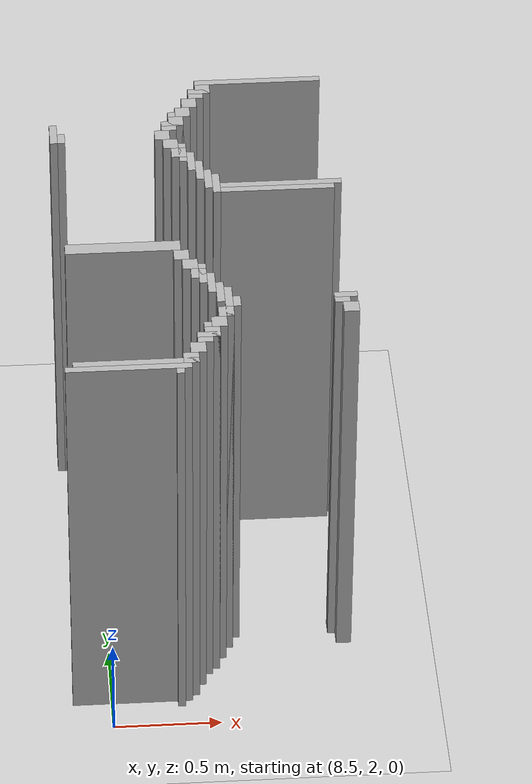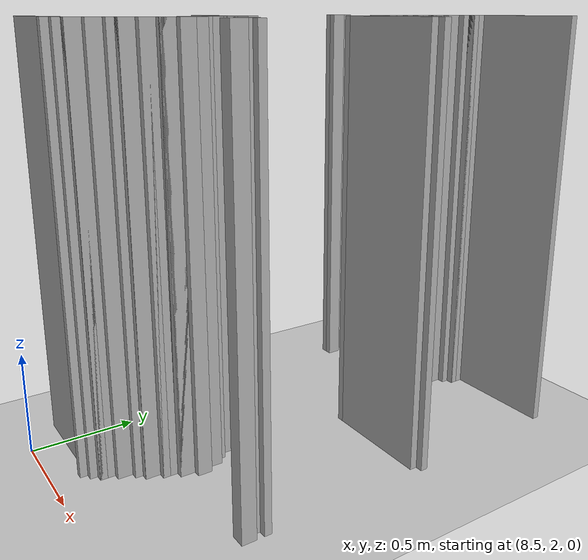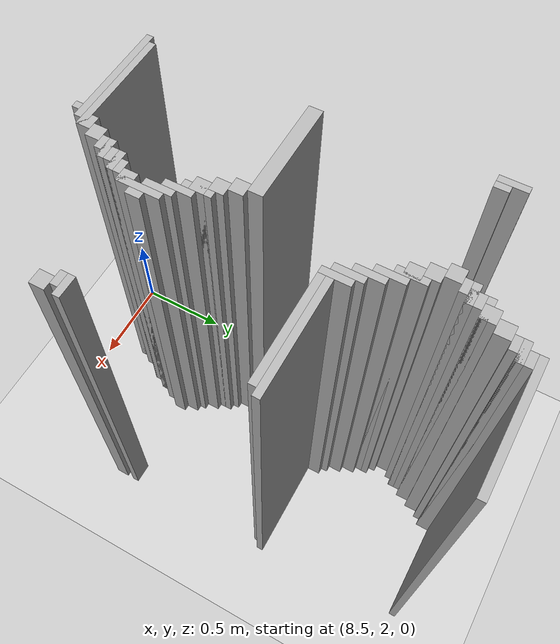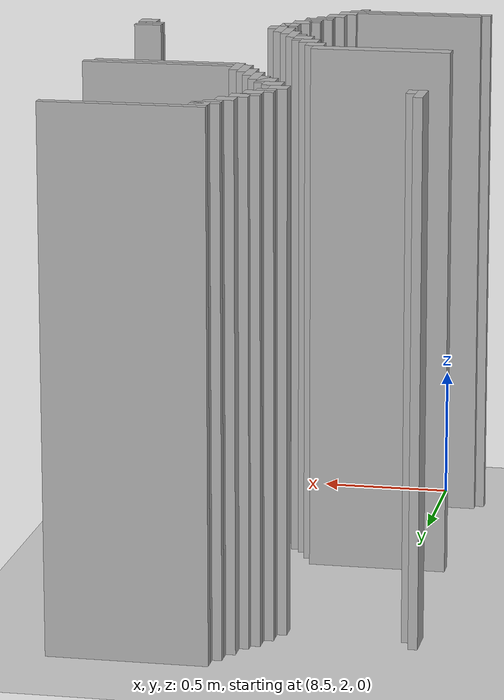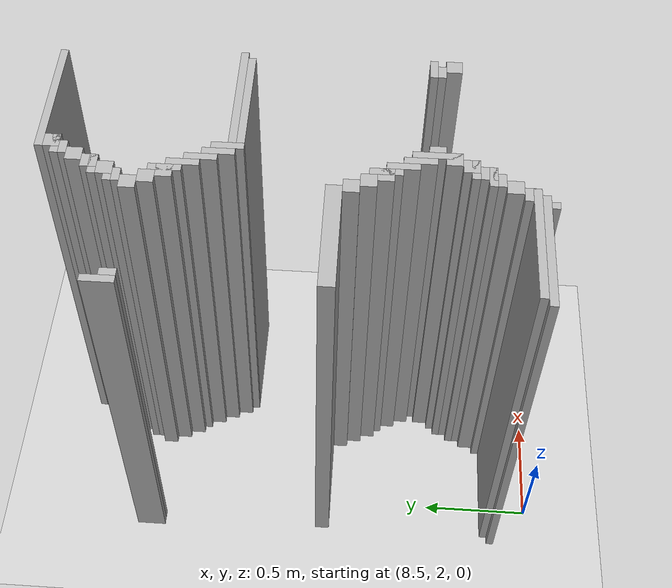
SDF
<sdf version="1.6">
 <world name="slam_world">
  <model name="ground_plane">
   <static>true</static>
   <link name="link">
    <collision name="collision">
     <geometry><plane><normal>0 0 1</normal><size>100 100</size></plane></geometry>
    </collision>
    <visual name="visual">
     <geometry><plane><normal>0 0 1</normal><size>100 100</size></plane></geometry>
     <material>
      <ambient>0.8 0.8 0.8 1</ambient>
      <diffuse>0.8 0.8 0.8 1</diffuse>
      <specular>0.8 0.8 0.8 1</specular>
     </material>
    </visual>
   </link>
  </model>
  <model name="wall_4306">
   <static>true</static>
   <pose>9.309744779582367 4.263341067285383 1.0 0 0 0</pose>
   <link name="link">
    <collision name="collision">
     <geometry><box><size>0.5916473317865429 0.03480278422273782 2.0</size></box></geometry>
    </collision>
    <visual name="visual">
     <geometry><box><size>0.5916473317865429 0.03480278422273782 2.0</size></box></geometry>
     <material><ambient>0.5 0.5 0.5 1</ambient><diffuse>0.7 0.7 0.7 1</diffuse></material>
    </visual>
   </link>
  </model>
  <model name="wall_4321">
   <static>true</static>
   <pose>9.048723897911833 4.211136890951276 1.0 0 0 0</pose>
   <link name="link">
    <collision name="collision">
     <geometry><box><size>0.06960556844547564 0.06960556844547564 2.0</size></box></geometry>
    </collision>
    <visual name="visual">
     <geometry><box><size>0.06960556844547564 0.06960556844547564 2.0</size></box></geometry>
     <material><ambient>0.5 0.5 0.5 1</ambient><diffuse>0.7 0.7 0.7 1</diffuse></material>
    </visual>
   </link>
  </model>
  <model name="wall_4336">
   <static>true</static>
   <pose>9.031322505800464 4.193735498839907 1.0 0 0 0</pose>
   <link name="link">
    <collision name="collision">
     <geometry><box><size>0.10440835266821345 0.03480278422273782 2.0</size></box></geometry>
    </collision>
    <visual name="visual">
     <geometry><box><size>0.10440835266821345 0.03480278422273782 2.0</size></box></geometry>
     <material><ambient>0.5 0.5 0.5 1</ambient><diffuse>0.7 0.7 0.7 1</diffuse></material>
    </visual>
   </link>
  </model>
  <model name="wall_4347">
   <static>true</static>
   <pose>9.013921113689095 4.158932714617169 1.0 0 0 0</pose>
   <link name="link">
    <collision name="collision">
     <geometry><box><size>0.06960556844547564 0.03480278422273782 2.0</size></box></geometry>
    </collision>
    <visual name="visual">
     <geometry><box><size>0.06960556844547564 0.03480278422273782 2.0</size></box></geometry>
     <material><ambient>0.5 0.5 0.5 1</ambient><diffuse>0.7 0.7 0.7 1</diffuse></material>
    </visual>
   </link>
  </model>
  <model name="wall_4360">
   <static>true</static>
   <pose>8.979118329466356 4.106728538283062 1.0 0 0 0</pose>
   <link name="link">
    <collision name="collision">
     <geometry><box><size>0.06960556844547564 0.06960556844547564 2.0</size></box></geometry>
    </collision>
    <visual name="visual">
     <geometry><box><size>0.06960556844547564 0.06960556844547564 2.0</size></box></geometry>
     <material><ambient>0.5 0.5 0.5 1</ambient><diffuse>0.7 0.7 0.7 1</diffuse></material>
    </visual>
   </link>
  </model>
  <model name="wall_4375">
   <static>true</static>
   <pose>8.944315545243619 4.037122969837587 1.0 0 0 0</pose>
   <link name="link">
    <collision name="collision">
     <geometry><box><size>0.06960556844547564 0.06960556844547564 2.0</size></box></geometry>
    </collision>
    <visual name="visual">
     <geometry><box><size>0.06960556844547564 0.06960556844547564 2.0</size></box></geometry>
     <material><ambient>0.5 0.5 0.5 1</ambient><diffuse>0.7 0.7 0.7 1</diffuse></material>
    </visual>
   </link>
  </model>
  <model name="wall_4390">
   <static>true</static>
   <pose>8.92691415313225 4.019721577726218 1.0 0 0 0</pose>
   <link name="link">
    <collision name="collision">
     <geometry><box><size>0.10440835266821345 0.03480278422273782 2.0</size></box></geometry>
    </collision>
    <visual name="visual">
     <geometry><box><size>0.10440835266821345 0.03480278422273782 2.0</size></box></geometry>
     <material><ambient>0.5 0.5 0.5 1</ambient><diffuse>0.7 0.7 0.7 1</diffuse></material>
    </visual>
   </link>
  </model>
  <model name="wall_4400">
   <static>true</static>
   <pose>8.909512761020881 3.967517401392111 1.0 0 0 0</pose>
   <link name="link">
    <collision name="collision">
     <geometry><box><size>0.06960556844547564 0.06960556844547564 2.0</size></box></geometry>
    </collision>
    <visual name="visual">
     <geometry><box><size>0.06960556844547564 0.06960556844547564 2.0</size></box></geometry>
     <material><ambient>0.5 0.5 0.5 1</ambient><diffuse>0.7 0.7 0.7 1</diffuse></material>
    </visual>
   </link>
  </model>
  <model name="wall_4412">
   <static>true</static>
   <pose>8.335266821345707 3.897911832946636 1.0 0 0 0</pose>
   <link name="link">
    <collision name="collision">
     <geometry><box><size>0.03480278422273782 0.13921113689095127 2.0</size></box></geometry>
    </collision>
    <visual name="visual">
     <geometry><box><size>0.03480278422273782 0.13921113689095127 2.0</size></box></geometry>
     <material><ambient>0.5 0.5 0.5 1</ambient><diffuse>0.7 0.7 0.7 1</diffuse></material>
    </visual>
   </link>
  </model>
  <model name="wall_4413">
   <static>true</static>
   <pose>8.892111368909513 3.9501160092807424 1.0 0 0 0</pose>
   <link name="link">
    <collision name="collision">
     <geometry><box><size>0.10440835266821345 0.03480278422273782 2.0</size></box></geometry>
    </collision>
    <visual name="visual">
     <geometry><box><size>0.10440835266821345 0.03480278422273782 2.0</size></box></geometry>
     <material><ambient>0.5 0.5 0.5 1</ambient><diffuse>0.7 0.7 0.7 1</diffuse></material>
    </visual>
   </link>
  </model>
  <model name="wall_4423">
   <static>true</static>
   <pose>8.874709976798144 3.9153132250580045 1.0 0 0 0</pose>
   <link name="link">
    <collision name="collision">
     <geometry><box><size>0.06960556844547564 0.03480278422273782 2.0</size></box></geometry>
    </collision>
    <visual name="visual">
     <geometry><box><size>0.06960556844547564 0.03480278422273782 2.0</size></box></geometry>
     <material><ambient>0.5 0.5 0.5 1</ambient><diffuse>0.7 0.7 0.7 1</diffuse></material>
    </visual>
   </link>
  </model>
  <model name="wall_4435">
   <static>true</static>
   <pose>8.370069605568444 3.863109048723898 1.0 0 0 0</pose>
   <link name="link">
    <collision name="collision">
     <geometry><box><size>0.03480278422273782 0.06960556844547564 2.0</size></box></geometry>
    </collision>
    <visual name="visual">
     <geometry><box><size>0.03480278422273782 0.06960556844547564 2.0</size></box></geometry>
     <material><ambient>0.5 0.5 0.5 1</ambient><diffuse>0.7 0.7 0.7 1</diffuse></material>
    </visual>
   </link>
  </model>
  <model name="wall_4436">
   <static>true</static>
   <pose>8.839907192575406 3.863109048723898 1.0 0 0 0</pose>
   <link name="link">
    <collision name="collision">
     <geometry><box><size>0.06960556844547564 0.06960556844547564 2.0</size></box></geometry>
    </collision>
    <visual name="visual">
     <geometry><box><size>0.06960556844547564 0.06960556844547564 2.0</size></box></geometry>
     <material><ambient>0.5 0.5 0.5 1</ambient><diffuse>0.7 0.7 0.7 1</diffuse></material>
    </visual>
   </link>
  </model>
  <model name="wall_4453">
   <static>true</static>
   <pose>8.874709976798144 3.793503480278422 1.0 0 0 0</pose>
   <link name="link">
    <collision name="collision">
     <geometry><box><size>0.06960556844547564 0.06960556844547564 2.0</size></box></geometry>
    </collision>
    <visual name="visual">
     <geometry><box><size>0.06960556844547564 0.06960556844547564 2.0</size></box></geometry>
     <material><ambient>0.5 0.5 0.5 1</ambient><diffuse>0.7 0.7 0.7 1</diffuse></material>
    </visual>
   </link>
  </model>
  <model name="wall_4470">
   <static>true</static>
   <pose>8.92691415313225 3.7238979118329465 1.0 0 0 0</pose>
   <link name="link">
    <collision name="collision">
     <geometry><box><size>0.03480278422273782 0.13921113689095127 2.0</size></box></geometry>
    </collision>
    <visual name="visual">
     <geometry><box><size>0.03480278422273782 0.13921113689095127 2.0</size></box></geometry>
     <material><ambient>0.5 0.5 0.5 1</ambient><diffuse>0.7 0.7 0.7 1</diffuse></material>
    </visual>
   </link>
  </model>
  <model name="wall_4487">
   <static>true</static>
   <pose>8.909512761020881 3.7238979118329465 1.0 0 0 0</pose>
   <link name="link">
    <collision name="collision">
     <geometry><box><size>0.06960556844547564 0.06960556844547564 2.0</size></box></geometry>
    </collision>
    <visual name="visual">
     <geometry><box><size>0.06960556844547564 0.06960556844547564 2.0</size></box></geometry>
     <material><ambient>0.5 0.5 0.5 1</ambient><diffuse>0.7 0.7 0.7 1</diffuse></material>
    </visual>
   </link>
  </model>
  <model name="wall_4504">
   <static>true</static>
   <pose>8.961716937354987 3.6542923433874708 1.0 0 0 0</pose>
   <link name="link">
    <collision name="collision">
     <geometry><box><size>0.03480278422273782 0.13921113689095127 2.0</size></box></geometry>
    </collision>
    <visual name="visual">
     <geometry><box><size>0.03480278422273782 0.13921113689095127 2.0</size></box></geometry>
     <material><ambient>0.5 0.5 0.5 1</ambient><diffuse>0.7 0.7 0.7 1</diffuse></material>
    </visual>
   </link>
  </model>
  <model name="wall_4528">
   <static>true</static>
   <pose>8.996519721577727 3.584686774941995 1.0 0 0 0</pose>
   <link name="link">
    <collision name="collision">
     <geometry><box><size>0.03480278422273782 0.13921113689095127 2.0</size></box></geometry>
    </collision>
    <visual name="visual">
     <geometry><box><size>0.03480278422273782 0.13921113689095127 2.0</size></box></geometry>
     <material><ambient>0.5 0.5 0.5 1</ambient><diffuse>0.7 0.7 0.7 1</diffuse></material>
    </visual>
   </link>
  </model>
  <model name="wall_4552">
   <static>true</static>
   <pose>9.031322505800464 3.51508120649652 1.0 0 0 0</pose>
   <link name="link">
    <collision name="collision">
     <geometry><box><size>0.03480278422273782 0.13921113689095127 2.0</size></box></geometry>
    </collision>
    <visual name="visual">
     <geometry><box><size>0.03480278422273782 0.13921113689095127 2.0</size></box></geometry>
     <material><ambient>0.5 0.5 0.5 1</ambient><diffuse>0.7 0.7 0.7 1</diffuse></material>
    </visual>
   </link>
  </model>
  <model name="wall_4569">
   <static>true</static>
   <pose>9.066125290023201 3.480278422273782 1.0 0 0 0</pose>
   <link name="link">
    <collision name="collision">
     <geometry><box><size>0.03480278422273782 0.13921113689095127 2.0</size></box></geometry>
    </collision>
    <visual name="visual">
     <geometry><box><size>0.03480278422273782 0.13921113689095127 2.0</size></box></geometry>
     <material><ambient>0.5 0.5 0.5 1</ambient><diffuse>0.7 0.7 0.7 1</diffuse></material>
    </visual>
   </link>
  </model>
  <model name="wall_4593">
   <static>true</static>
   <pose>9.361948955916473 3.4628770301624128 1.0 0 0 0</pose>
   <link name="link">
    <collision name="collision">
     <geometry><box><size>0.5568445475638051 0.03480278422273782 2.0</size></box></geometry>
    </collision>
    <visual name="visual">
     <geometry><box><size>0.5568445475638051 0.03480278422273782 2.0</size></box></geometry>
     <material><ambient>0.5 0.5 0.5 1</ambient><diffuse>0.7 0.7 0.7 1</diffuse></material>
    </visual>
   </link>
  </model>
  <model name="wall_4604">
   <static>true</static>
   <pose>9.344547563805104 3.428074245939675 1.0 0 0 0</pose>
   <link name="link">
    <collision name="collision">
     <geometry><box><size>0.5220417633410672 0.03480278422273782 2.0</size></box></geometry>
    </collision>
    <visual name="visual">
     <geometry><box><size>0.5220417633410672 0.03480278422273782 2.0</size></box></geometry>
     <material><ambient>0.5 0.5 0.5 1</ambient><diffuse>0.7 0.7 0.7 1</diffuse></material>
    </visual>
   </link>
  </model>
  <model name="wall_4719">
   <static>true</static>
   <pose>8.61368909512761 3.02784222737819 1.0 0 0 0</pose>
   <link name="link">
    <collision name="collision">
     <geometry><box><size>0.5220417633410672 0.06960556844547564 2.0</size></box></geometry>
    </collision>
    <visual name="visual">
     <geometry><box><size>0.5220417633410672 0.06960556844547564 2.0</size></box></geometry>
     <material><ambient>0.5 0.5 0.5 1</ambient><diffuse>0.7 0.7 0.7 1</diffuse></material>
    </visual>
   </link>
  </model>
  <model name="wall_4740">
   <static>true</static>
   <pose>8.874709976798144 2.9582366589327145 1.0 0 0 0</pose>
   <link name="link">
    <collision name="collision">
     <geometry><box><size>0.06960556844547564 0.06960556844547564 2.0</size></box></geometry>
    </collision>
    <visual name="visual">
     <geometry><box><size>0.06960556844547564 0.06960556844547564 2.0</size></box></geometry>
     <material><ambient>0.5 0.5 0.5 1</ambient><diffuse>0.7 0.7 0.7 1</diffuse></material>
    </visual>
   </link>
  </model>
  <model name="wall_4759">
   <static>true</static>
   <pose>8.909512761020881 2.8886310904872388 1.0 0 0 0</pose>
   <link name="link">
    <collision name="collision">
     <geometry><box><size>0.06960556844547564 0.06960556844547564 2.0</size></box></geometry>
    </collision>
    <visual name="visual">
     <geometry><box><size>0.06960556844547564 0.06960556844547564 2.0</size></box></geometry>
     <material><ambient>0.5 0.5 0.5 1</ambient><diffuse>0.7 0.7 0.7 1</diffuse></material>
    </visual>
   </link>
  </model>
  <model name="wall_4775">
   <static>true</static>
   <pose>8.961716937354987 2.819025522041763 1.0 0 0 0</pose>
   <link name="link">
    <collision name="collision">
     <geometry><box><size>0.03480278422273782 0.13921113689095127 2.0</size></box></geometry>
    </collision>
    <visual name="visual">
     <geometry><box><size>0.03480278422273782 0.13921113689095127 2.0</size></box></geometry>
     <material><ambient>0.5 0.5 0.5 1</ambient><diffuse>0.7 0.7 0.7 1</diffuse></material>
    </visual>
   </link>
  </model>
  <model name="wall_4791">
   <static>true</static>
   <pose>8.944315545243619 2.819025522041763 1.0 0 0 0</pose>
   <link name="link">
    <collision name="collision">
     <geometry><box><size>0.06960556844547564 0.06960556844547564 2.0</size></box></geometry>
    </collision>
    <visual name="visual">
     <geometry><box><size>0.06960556844547564 0.06960556844547564 2.0</size></box></geometry>
     <material><ambient>0.5 0.5 0.5 1</ambient><diffuse>0.7 0.7 0.7 1</diffuse></material>
    </visual>
   </link>
  </model>
  <model name="wall_4807">
   <static>true</static>
   <pose>8.996519721577727 2.7494199535962878 1.0 0 0 0</pose>
   <link name="link">
    <collision name="collision">
     <geometry><box><size>0.03480278422273782 0.13921113689095127 2.0</size></box></geometry>
    </collision>
    <visual name="visual">
     <geometry><box><size>0.03480278422273782 0.13921113689095127 2.0</size></box></geometry>
     <material><ambient>0.5 0.5 0.5 1</ambient><diffuse>0.7 0.7 0.7 1</diffuse></material>
    </visual>
   </link>
  </model>
  <model name="wall_4831">
   <static>true</static>
   <pose>9.031322505800464 2.679814385150812 1.0 0 0 0</pose>
   <link name="link">
    <collision name="collision">
     <geometry><box><size>0.03480278422273782 0.13921113689095127 2.0</size></box></geometry>
    </collision>
    <visual name="visual">
     <geometry><box><size>0.03480278422273782 0.13921113689095127 2.0</size></box></geometry>
     <material><ambient>0.5 0.5 0.5 1</ambient><diffuse>0.7 0.7 0.7 1</diffuse></material>
    </visual>
   </link>
  </model>
  <model name="wall_4847">
   <static>true</static>
   <pose>9.066125290023201 2.6102088167053363 1.0 0 0 0</pose>
   <link name="link">
    <collision name="collision">
     <geometry><box><size>0.03480278422273782 0.2088167053364269 2.0</size></box></geometry>
    </collision>
    <visual name="visual">
     <geometry><box><size>0.03480278422273782 0.2088167053364269 2.0</size></box></geometry>
     <material><ambient>0.5 0.5 0.5 1</ambient><diffuse>0.7 0.7 0.7 1</diffuse></material>
    </visual>
   </link>
  </model>
  <model name="wall_4870">
   <static>true</static>
   <pose>9.100928074245939 2.6102088167053363 1.0 0 0 0</pose>
   <link name="link">
    <collision name="collision">
     <geometry><box><size>0.03480278422273782 0.06960556844547564 2.0</size></box></geometry>
    </collision>
    <visual name="visual">
     <geometry><box><size>0.03480278422273782 0.06960556844547564 2.0</size></box></geometry>
     <material><ambient>0.5 0.5 0.5 1</ambient><diffuse>0.7 0.7 0.7 1</diffuse></material>
    </visual>
   </link>
  </model>
  <model name="wall_4871">
   <static>true</static>
   <pose>9.588167053364268 2.627610208816705 1.0 0 0 0</pose>
   <link name="link">
    <collision name="collision">
     <geometry><box><size>0.10440835266821345 0.03480278422273782 2.0</size></box></geometry>
    </collision>
    <visual name="visual">
     <geometry><box><size>0.10440835266821345 0.03480278422273782 2.0</size></box></geometry>
     <material><ambient>0.5 0.5 0.5 1</ambient><diffuse>0.7 0.7 0.7 1</diffuse></material>
    </visual>
   </link>
  </model>
  <model name="wall_4883">
   <static>true</static>
   <pose>9.5707656612529 2.5928074245939676 1.0 0 0 0</pose>
   <link name="link">
    <collision name="collision">
     <geometry><box><size>0.06960556844547564 0.03480278422273782 2.0</size></box></geometry>
    </collision>
    <visual name="visual">
     <geometry><box><size>0.06960556844547564 0.03480278422273782 2.0</size></box></geometry>
     <material><ambient>0.5 0.5 0.5 1</ambient><diffuse>0.7 0.7 0.7 1</diffuse></material>
    </visual>
   </link>
  </model>
  <model name="wall_4894">
   <static>true</static>
   <pose>9.048723897911833 2.5406032482598606 1.0 0 0 0</pose>
   <link name="link">
    <collision name="collision">
     <geometry><box><size>0.06960556844547564 0.06960556844547564 2.0</size></box></geometry>
    </collision>
    <visual name="visual">
     <geometry><box><size>0.06960556844547564 0.06960556844547564 2.0</size></box></geometry>
     <material><ambient>0.5 0.5 0.5 1</ambient><diffuse>0.7 0.7 0.7 1</diffuse></material>
    </visual>
   </link>
  </model>
  <model name="wall_4895">
   <static>true</static>
   <pose>9.605568445475638 2.5406032482598606 1.0 0 0 0</pose>
   <link name="link">
    <collision name="collision">
     <geometry><box><size>0.06960556844547564 0.06960556844547564 2.0</size></box></geometry>
    </collision>
    <visual name="visual">
     <geometry><box><size>0.06960556844547564 0.06960556844547564 2.0</size></box></geometry>
     <material><ambient>0.5 0.5 0.5 1</ambient><diffuse>0.7 0.7 0.7 1</diffuse></material>
    </visual>
   </link>
  </model>
  <model name="wall_4914">
   <static>true</static>
   <pose>9.013921113689095 2.470997679814385 1.0 0 0 0</pose>
   <link name="link">
    <collision name="collision">
     <geometry><box><size>0.06960556844547564 0.06960556844547564 2.0</size></box></geometry>
    </collision>
    <visual name="visual">
     <geometry><box><size>0.06960556844547564 0.06960556844547564 2.0</size></box></geometry>
     <material><ambient>0.5 0.5 0.5 1</ambient><diffuse>0.7 0.7 0.7 1</diffuse></material>
    </visual>
   </link>
  </model>
  <model name="wall_4927">
   <static>true</static>
   <pose>8.996519721577727 2.453596287703016 1.0 0 0 0</pose>
   <link name="link">
    <collision name="collision">
     <geometry><box><size>0.10440835266821345 0.03480278422273782 2.0</size></box></geometry>
    </collision>
    <visual name="visual">
     <geometry><box><size>0.10440835266821345 0.03480278422273782 2.0</size></box></geometry>
     <material><ambient>0.5 0.5 0.5 1</ambient><diffuse>0.7 0.7 0.7 1</diffuse></material>
    </visual>
   </link>
  </model>
  <model name="wall_4939">
   <static>true</static>
   <pose>8.979118329466356 2.4013921113689096 1.0 0 0 0</pose>
   <link name="link">
    <collision name="collision">
     <geometry><box><size>0.06960556844547564 0.06960556844547564 2.0</size></box></geometry>
    </collision>
    <visual name="visual">
     <geometry><box><size>0.06960556844547564 0.06960556844547564 2.0</size></box></geometry>
     <material><ambient>0.5 0.5 0.5 1</ambient><diffuse>0.7 0.7 0.7 1</diffuse></material>
    </visual>
   </link>
  </model>
  <model name="wall_4952">
   <static>true</static>
   <pose>8.961716937354987 2.3839907192575405 1.0 0 0 0</pose>
   <link name="link">
    <collision name="collision">
     <geometry><box><size>0.10440835266821345 0.03480278422273782 2.0</size></box></geometry>
    </collision>
    <visual name="visual">
     <geometry><box><size>0.10440835266821345 0.03480278422273782 2.0</size></box></geometry>
     <material><ambient>0.5 0.5 0.5 1</ambient><diffuse>0.7 0.7 0.7 1</diffuse></material>
    </visual>
   </link>
  </model>
  <model name="wall_4963">
   <static>true</static>
   <pose>8.944315545243619 2.3491879350348026 1.0 0 0 0</pose>
   <link name="link">
    <collision name="collision">
     <geometry><box><size>0.06960556844547564 0.03480278422273782 2.0</size></box></geometry>
    </collision>
    <visual name="visual">
     <geometry><box><size>0.06960556844547564 0.03480278422273782 2.0</size></box></geometry>
     <material><ambient>0.5 0.5 0.5 1</ambient><diffuse>0.7 0.7 0.7 1</diffuse></material>
    </visual>
   </link>
  </model>
  <model name="wall_4973">
   <static>true</static>
   <pose>8.909512761020881 2.296983758700696 1.0 0 0 0</pose>
   <link name="link">
    <collision name="collision">
     <geometry><box><size>0.06960556844547564 0.06960556844547564 2.0</size></box></geometry>
    </collision>
    <visual name="visual">
     <geometry><box><size>0.06960556844547564 0.06960556844547564 2.0</size></box></geometry>
     <material><ambient>0.5 0.5 0.5 1</ambient><diffuse>0.7 0.7 0.7 1</diffuse></material>
    </visual>
   </link>
  </model>
  <model name="wall_4986">
   <static>true</static>
   <pose>8.874709976798144 2.2273781902552203 1.0 0 0 0</pose>
   <link name="link">
    <collision name="collision">
     <geometry><box><size>0.06960556844547564 0.06960556844547564 2.0</size></box></geometry>
    </collision>
    <visual name="visual">
     <geometry><box><size>0.06960556844547564 0.06960556844547564 2.0</size></box></geometry>
     <material><ambient>0.5 0.5 0.5 1</ambient><diffuse>0.7 0.7 0.7 1</diffuse></material>
    </visual>
   </link>
  </model>
  <model name="wall_4999">
   <static>true</static>
   <pose>8.631090487238978 2.2099767981438516 1.0 0 0 0</pose>
   <link name="link">
    <collision name="collision">
     <geometry><box><size>0.5568445475638051 0.03480278422273782 2.0</size></box></geometry>
    </collision>
    <visual name="visual">
     <geometry><box><size>0.5568445475638051 0.03480278422273782 2.0</size></box></geometry>
     <material><ambient>0.5 0.5 0.5 1</ambient><diffuse>0.7 0.7 0.7 1</diffuse></material>
    </visual>
   </link>
  </model>
  <model name="wall_5010">
   <static>true</static>
   <pose>8.596287703016241 2.1751740139211138 1.0 0 0 0</pose>
   <link name="link">
    <collision name="collision">
     <geometry><box><size>0.5568445475638051 0.03480278422273782 2.0</size></box></geometry>
    </collision>
    <visual name="visual">
     <geometry><box><size>0.5568445475638051 0.03480278422273782 2.0</size></box></geometry>
     <material><ambient>0.5 0.5 0.5 1</ambient><diffuse>0.7 0.7 0.7 1</diffuse></material>
    </visual>
   </link>
  </model>
  <model name="wall_5024">
   <static>true</static>
   <pose>8.822505800464036 2.140371229698376 1.0 0 0 0</pose>
   <link name="link">
    <collision name="collision">
     <geometry><box><size>0.03480278422273782 0.03480278422273782 2.0</size></box></geometry>
    </collision>
    <visual name="visual">
     <geometry><box><size>0.03480278422273782 0.03480278422273782 2.0</size></box></geometry>
     <material><ambient>0.5 0.5 0.5 1</ambient><diffuse>0.7 0.7 0.7 1</diffuse></material>
    </visual>
   </link>
  </model>
 </world>
</sdf>
